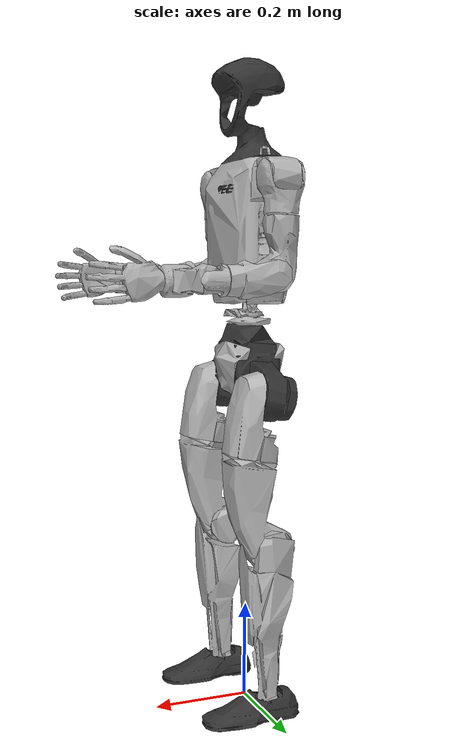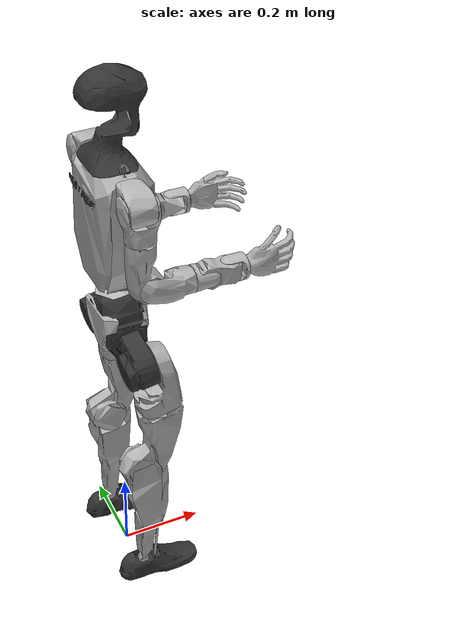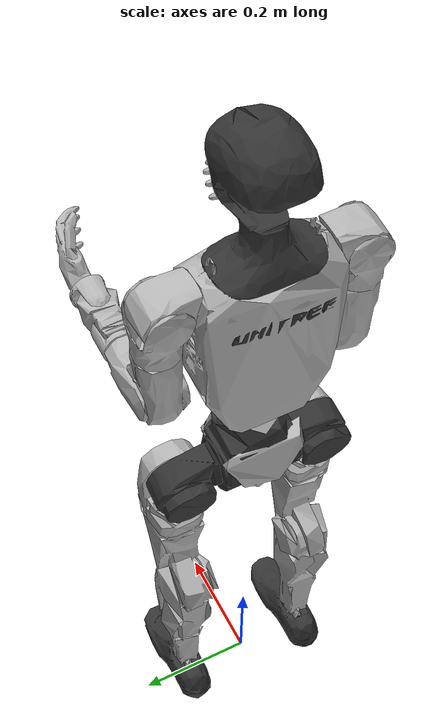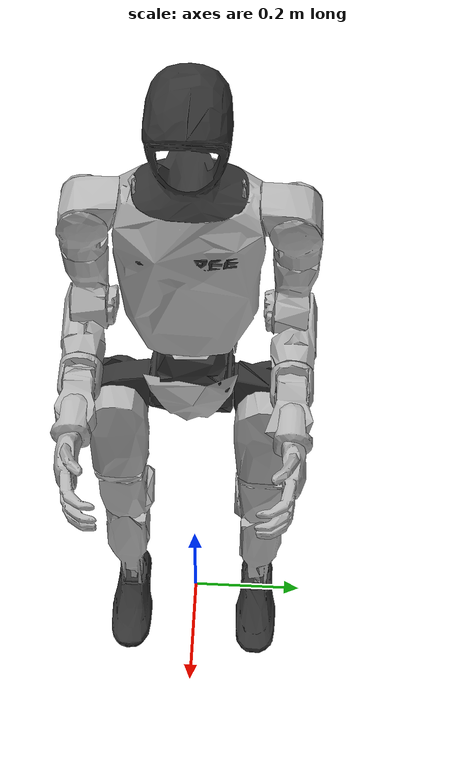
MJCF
<!-- Unitree G1 from MuJoCo Menagerie (BSD-3-Clause, see LICENSE), meshes packed by tools/pack_g1.py -->
<mujoco model="g1_29dof_rev_1_0">
  <compiler angle="radian" meshdir="meshes"/>

  <option integrator="implicitfast"/>

  <default>
    <default class="g1">
      <site rgba="1 0 0 1" size="0.01" group="5"/>
      <joint armature="0.01" frictionloss="0.3"/>
      <position kp="500" dampratio="1" inheritrange="1"/>
      <default class="visual">
        <geom group="2" type="mesh" contype="0" conaffinity="0" density="0" material="metal"/>
      </default>
      <default class="collision">
        <geom group="3" type="mesh"/>
        <default class="foot">
          <geom type="sphere" size="0.005" priority="1" friction="0.6" condim="3"/>
        </default>
      </default>
    </default>
  </default>

  <asset>
    <mesh name="head_link" file="head_link.stl"/>
    <mesh name="left_ankle_pitch_link" file="left_ankle_pitch_link.stl"/>
    <mesh name="left_ankle_roll_link" file="left_ankle_roll_link.stl"/>
    <mesh name="left_elbow_link" file="left_elbow_link.stl"/>
    <mesh name="left_hip_pitch_link" file="left_hip_pitch_link.stl"/>
    <mesh name="left_hip_roll_link" file="left_hip_roll_link.stl"/>
    <mesh name="left_hip_yaw_link" file="left_hip_yaw_link.stl"/>
    <mesh name="left_knee_link" file="left_knee_link.stl"/>
    <mesh name="left_rubber_hand" file="left_rubber_hand.stl"/>
    <mesh name="left_shoulder_pitch_link" file="left_shoulder_pitch_link.stl"/>
    <mesh name="left_shoulder_roll_link" file="left_shoulder_roll_link.stl"/>
    <mesh name="left_shoulder_yaw_link" file="left_shoulder_yaw_link.stl"/>
    <mesh name="left_wrist_pitch_link" file="left_wrist_pitch_link.stl"/>
    <mesh name="left_wrist_roll_link" file="left_wrist_roll_link.stl"/>
    <mesh name="left_wrist_yaw_link" file="left_wrist_yaw_link.stl"/>
    <mesh name="logo_link" file="logo_link.stl"/>
    <mesh name="pelvis" file="pelvis.stl"/>
    <mesh name="pelvis_contour_link" file="pelvis_contour_link.stl"/>
    <mesh name="right_ankle_pitch_link" file="right_ankle_pitch_link.stl"/>
    <mesh name="right_ankle_roll_link" file="right_ankle_roll_link.stl"/>
    <mesh name="right_elbow_link" file="right_elbow_link.stl"/>
    <mesh name="right_hip_pitch_link" file="right_hip_pitch_link.stl"/>
    <mesh name="right_hip_roll_link" file="right_hip_roll_link.stl"/>
    <mesh name="right_hip_yaw_link" file="right_hip_yaw_link.stl"/>
    <mesh name="right_knee_link" file="right_knee_link.stl"/>
    <mesh name="right_rubber_hand" file="right_rubber_hand.stl"/>
    <mesh name="right_shoulder_pitch_link" file="right_shoulder_pitch_link.stl"/>
    <mesh name="right_shoulder_roll_link" file="right_shoulder_roll_link.stl"/>
    <mesh name="right_shoulder_yaw_link" file="right_shoulder_yaw_link.stl"/>
    <mesh name="right_wrist_pitch_link" file="right_wrist_pitch_link.stl"/>
    <mesh name="right_wrist_roll_link" file="right_wrist_roll_link.stl"/>
    <mesh name="right_wrist_yaw_link" file="right_wrist_yaw_link.stl"/>
    <mesh name="torso_link" file="torso_link.stl"/>
    <mesh name="waist_roll_link" file="waist_roll_link.stl"/>
    <mesh name="waist_yaw_link" file="waist_yaw_link.stl"/>
    <mesh name="left_ankle_pitch_link_hull" file="left_ankle_pitch_link_hull.stl"/>
    <mesh name="left_elbow_link_hull" file="left_elbow_link_hull.stl"/>
    <mesh name="left_hip_pitch_link_hull" file="left_hip_pitch_link_hull.stl"/>
    <mesh name="left_hip_roll_link_hull" file="left_hip_roll_link_hull.stl"/>
    <mesh name="left_hip_yaw_link_hull" file="left_hip_yaw_link_hull.stl"/>
    <mesh name="left_knee_link_hull" file="left_knee_link_hull.stl"/>
    <mesh name="left_shoulder_yaw_link_hull" file="left_shoulder_yaw_link_hull.stl"/>
    <mesh name="left_wrist_pitch_link_hull" file="left_wrist_pitch_link_hull.stl"/>
    <mesh name="left_wrist_roll_link_hull" file="left_wrist_roll_link_hull.stl"/>
    <mesh name="left_wrist_yaw_link_hull" file="left_wrist_yaw_link_hull.stl"/>
    <mesh name="pelvis_contour_link_hull" file="pelvis_contour_link_hull.stl"/>
    <mesh name="right_ankle_pitch_link_hull" file="right_ankle_pitch_link_hull.stl"/>
    <mesh name="right_elbow_link_hull" file="right_elbow_link_hull.stl"/>
    <mesh name="right_hip_pitch_link_hull" file="right_hip_pitch_link_hull.stl"/>
    <mesh name="right_hip_roll_link_hull" file="right_hip_roll_link_hull.stl"/>
    <mesh name="right_hip_yaw_link_hull" file="right_hip_yaw_link_hull.stl"/>
    <mesh name="right_knee_link_hull" file="right_knee_link_hull.stl"/>
    <mesh name="right_shoulder_yaw_link_hull" file="right_shoulder_yaw_link_hull.stl"/>
    <mesh name="right_wrist_pitch_link_hull" file="right_wrist_pitch_link_hull.stl"/>
    <mesh name="right_wrist_roll_link_hull" file="right_wrist_roll_link_hull.stl"/>
    <mesh name="right_wrist_yaw_link_hull" file="right_wrist_yaw_link_hull.stl"/>
    <mesh name="torso_link_hull" file="torso_link_hull.stl"/>
    <material name="black" rgba="0.2 0.2 0.2 1"/>
    <material name="metal" rgba="0.7 0.7 0.7 1"/>
  </asset>

  <worldbody>
    <light pos="1 0 3.5" dir="0 0 -1" directional="true"/>
    <body name="pelvis" pos="0 0 0.793" childclass="g1">
      <inertial pos="0 0 -0.07605" quat="1 0 -0.000399148 0" mass="3.813" diaginertia="0.010549 0.0093089 0.0079184"/>
      <freejoint name="floating_base_joint"/>
      <geom class="visual" material="black" mesh="pelvis"/>
      <geom class="visual" mesh="pelvis_contour_link"/>
      <geom class="collision" mesh="pelvis_contour_link_hull"/>
      <site name="imu_in_pelvis" pos="0.04525 0 -0.08339" size="0.01"/>
      <body name="left_hip_pitch_link" pos="0 0.064452 -0.1027">
        <inertial pos="0.002741 0.047791 -0.02606" quat="0.954862 0.293964 0.0302556 0.030122" mass="1.35"
          diaginertia="0.00181517 0.00153422 0.00116212"/>
        <joint name="left_hip_pitch_joint" axis="0 1 0" range="-2.5307 2.8798" actuatorfrcrange="-88 88"/>
        <geom class="visual" material="black" mesh="left_hip_pitch_link"/>
        <geom class="collision" material="black" mesh="left_hip_pitch_link_hull"/>
        <body name="left_hip_roll_link" pos="0 0.052 -0.030465" quat="0.996179 0 -0.0873386 0">
          <inertial pos="0.029812 -0.001045 -0.087934" quat="0.977808 -1.97119e-05 0.205576 -0.0403793" mass="1.52"
            diaginertia="0.00254986 0.00241169 0.00148755"/>
          <joint name="left_hip_roll_joint" axis="1 0 0" range="-0.5236 2.9671" actuatorfrcrange="-139 139"/>
          <geom class="visual" mesh="left_hip_roll_link"/>
          <geom class="collision" mesh="left_hip_roll_link_hull"/>
          <body name="left_hip_yaw_link" pos="0.025001 0 -0.12412">
            <inertial pos="-0.057709 -0.010981 -0.15078" quat="0.600598 0.15832 0.223482 0.751181" mass="1.702"
              diaginertia="0.00776166 0.00717575 0.00160139"/>
            <joint name="left_hip_yaw_joint" axis="0 0 1" range="-2.7576 2.7576" actuatorfrcrange="-88 88"/>
            <geom class="visual" mesh="left_hip_yaw_link"/>
            <geom class="collision" mesh="left_hip_yaw_link_hull"/>
            <body name="left_knee_link" pos="-0.078273 0.0021489 -0.17734" quat="0.996179 0 0.0873386 0">
              <inertial pos="0.005457 0.003964 -0.12074" quat="0.923418 -0.0327699 0.0158246 0.382067" mass="1.932"
                diaginertia="0.0113804 0.0112778 0.00146458"/>
              <joint name="left_knee_joint" axis="0 1 0" range="-0.087267 2.8798" actuatorfrcrange="-139 139"/>
              <geom class="visual" mesh="left_knee_link"/>
              <geom class="collision" mesh="left_knee_link_hull"/>
              <body name="left_ankle_pitch_link" pos="0 -9.4445e-05 -0.30001">
                <inertial pos="-0.007269 0 0.011137" quat="0.603053 0.369225 0.369225 0.603053" mass="0.074"
                  diaginertia="1.89e-05 1.40805e-05 6.9195e-06"/>
                <joint name="left_ankle_pitch_joint" axis="0 1 0" range="-0.87267 0.5236" actuatorfrcrange="-50 50"/>
                <geom class="visual" mesh="left_ankle_pitch_link"/>
                <geom class="collision" mesh="left_ankle_pitch_link_hull"/>
                <body name="left_ankle_roll_link" pos="0 0 -0.017558">
                  <inertial pos="0.026505 0 -0.016425" quat="-0.000481092 0.728482 -0.000618967 0.685065" mass="0.608"
                    diaginertia="0.00167218 0.0016161 0.000217621"/>
                  <joint name="left_ankle_roll_joint" axis="1 0 0" range="-0.2618 0.2618" actuatorfrcrange="-50 50"/>
                  <geom class="visual" material="black" mesh="left_ankle_roll_link"/>
                  <geom class="foot" pos="-0.05 0.025 -0.03"/>
                  <geom class="foot" pos="-0.05 -0.025 -0.03"/>
                  <geom class="foot" pos="0.12 0.03 -0.03"/>
                  <geom class="foot" pos="0.12 -0.03 -0.03"/>
                  <site name="left_foot"/>
                </body>
              </body>
            </body>
          </body>
        </body>
      </body>
      <body name="right_hip_pitch_link" pos="0 -0.064452 -0.1027">
        <inertial pos="0.002741 -0.047791 -0.02606" quat="0.954862 -0.293964 0.0302556 -0.030122" mass="1.35"
          diaginertia="0.00181517 0.00153422 0.00116212"/>
        <joint name="right_hip_pitch_joint" axis="0 1 0" range="-2.5307 2.8798" actuatorfrcrange="-88 88"/>
        <geom class="visual" material="black" mesh="right_hip_pitch_link"/>
        <geom class="collision" material="black" mesh="right_hip_pitch_link_hull"/>
        <body name="right_hip_roll_link" pos="0 -0.052 -0.030465" quat="0.996179 0 -0.0873386 0">
          <inertial pos="0.029812 0.001045 -0.087934" quat="0.977808 1.97119e-05 0.205576 0.0403793" mass="1.52"
            diaginertia="0.00254986 0.00241169 0.00148755"/>
          <joint name="right_hip_roll_joint" axis="1 0 0" range="-2.9671 0.5236" actuatorfrcrange="-139 139"/>
          <geom class="visual" mesh="right_hip_roll_link"/>
          <geom class="collision" mesh="right_hip_roll_link_hull"/>
          <body name="right_hip_yaw_link" pos="0.025001 0 -0.12412">
            <inertial pos="-0.057709 0.010981 -0.15078" quat="0.751181 0.223482 0.15832 0.600598" mass="1.702"
              diaginertia="0.00776166 0.00717575 0.00160139"/>
            <joint name="right_hip_yaw_joint" axis="0 0 1" range="-2.7576 2.7576" actuatorfrcrange="-88 88"/>
            <geom class="visual" mesh="right_hip_yaw_link"/>
            <geom class="collision" mesh="right_hip_yaw_link_hull"/>
            <body name="right_knee_link" pos="-0.078273 -0.0021489 -0.17734" quat="0.996179 0 0.0873386 0">
              <inertial pos="0.005457 -0.003964 -0.12074" quat="0.923439 0.0345276 0.0116333 -0.382012" mass="1.932"
                diaginertia="0.011374 0.0112843 0.00146452"/>
              <joint name="right_knee_joint" axis="0 1 0" range="-0.087267 2.8798" actuatorfrcrange="-139 139"/>
              <geom class="visual" mesh="right_knee_link"/>
              <geom class="collision" mesh="right_knee_link_hull"/>
              <body name="right_ankle_pitch_link" pos="0 9.4445e-05 -0.30001">
                <inertial pos="-0.007269 0 0.011137" quat="0.603053 0.369225 0.369225 0.603053" mass="0.074"
                  diaginertia="1.89e-05 1.40805e-05 6.9195e-06"/>
                <joint name="right_ankle_pitch_joint" axis="0 1 0" range="-0.87267 0.5236" actuatorfrcrange="-50 50"/>
                <geom class="visual" mesh="right_ankle_pitch_link"/>
                <geom class="collision" mesh="right_ankle_pitch_link_hull"/>
                <body name="right_ankle_roll_link" pos="0 0 -0.017558">
                  <inertial pos="0.026505 0 -0.016425" quat="0.000481092 0.728482 0.000618967 0.685065" mass="0.608"
                    diaginertia="0.00167218 0.0016161 0.000217621"/>
                  <joint name="right_ankle_roll_joint" axis="1 0 0" range="-0.2618 0.2618" actuatorfrcrange="-50 50"/>
                  <geom class="visual" material="black" mesh="right_ankle_roll_link"/>
                  <geom class="foot" pos="-0.05 0.025 -0.03"/>
                  <geom class="foot" pos="-0.05 -0.025 -0.03"/>
                  <geom class="foot" pos="0.12 0.03 -0.03"/>
                  <geom class="foot" pos="0.12 -0.03 -0.03"/>
                  <site name="right_foot"/>
                </body>
              </body>
            </body>
          </body>
        </body>
      </body>
      <body name="waist_yaw_link">
        <inertial pos="0.003494 0.000233 0.018034" quat="0.289697 0.591001 -0.337795 0.672821" mass="0.214"
          diaginertia="0.000163531 0.000107714 0.000102205"/>
        <joint name="waist_yaw_joint" axis="0 0 1" range="-2.618 2.618" actuatorfrcrange="-88 88"/>
        <geom class="visual" mesh="waist_yaw_link"/>
        <body name="waist_roll_link" pos="-0.0039635 0 0.044">
          <inertial pos="0 2.3e-05 0" quat="0.5 0.5 -0.5 0.5" mass="0.086" diaginertia="8.245e-06 7.079e-06 6.339e-06"/>
          <joint name="waist_roll_joint" axis="1 0 0" range="-0.52 0.52" actuatorfrcrange="-50 50"/>
          <geom class="visual" mesh="waist_roll_link"/>
          <body name="torso_link">
            <inertial pos="0.00203158 0.000339683 0.184568" quat="0.999803 -6.03319e-05 0.0198256 0.00131986"
              mass="7.818" diaginertia="0.121847 0.109825 0.0273735"/>
            <joint name="waist_pitch_joint" axis="0 1 0" range="-0.52 0.52" actuatorfrcrange="-50 50"/>
            <geom class="visual" mesh="torso_link"/>
            <geom class="collision" mesh="torso_link_hull"/>
            <geom pos="0.0039635 0 -0.044" quat="1 0 0 0" class="visual" material="black" mesh="logo_link"/>
            <geom pos="0.0039635 0 -0.044" quat="1 0 0 0" class="collision" material="black" mesh="logo_link"/>
            <geom pos="0.0039635 0 -0.044" quat="1 0 0 0" class="visual" material="black" mesh="head_link"/>
            <geom pos="0.0039635 0 -0.044" quat="1 0 0 0" class="collision" material="black" mesh="head_link"/>
            <site name="imu_in_torso" pos="-0.03959 -0.00224 0.14792" size="0.01"/>
            <body name="left_shoulder_pitch_link" pos="0.0039563 0.10022 0.24778"
              quat="0.990264 0.139201 1.38722e-05 -9.86868e-05">
              <inertial pos="0 0.035892 -0.011628" quat="0.654152 0.0130458 -0.326267 0.68225" mass="0.718"
                diaginertia="0.000465864 0.000432842 0.000406394"/>
              <joint name="left_shoulder_pitch_joint" axis="0 1 0" range="-3.0892 2.6704" actuatorfrcrange="-25 25"/>
              <geom class="visual" mesh="left_shoulder_pitch_link"/>
              <geom size="0.03 0.025" pos="0 0.04 -0.01" quat="0.707107 0 0.707107 0" type="cylinder"
                rgba="0.7 0.7 0.7 1" class="collision"/>
              <body name="left_shoulder_roll_link" pos="0 0.038 -0.013831" quat="0.990268 -0.139172 0 0">
                <inertial pos="-0.000227 0.00727 -0.063243" quat="0.701256 -0.0196223 -0.00710317 0.712604" mass="0.643"
                  diaginertia="0.000691311 0.000618011 0.000388977"/>
                <joint name="left_shoulder_roll_joint" axis="1 0 0" range="-1.5882 2.2515" actuatorfrcrange="-25 25"/>
                <geom class="visual" mesh="left_shoulder_roll_link"/>
                <geom size="0.03 0.015" pos="-0.004 0.006 -0.053" type="cylinder" rgba="0.7 0.7 0.7 1"
                  class="collision"/>
                <body name="left_shoulder_yaw_link" pos="0 0.00624 -0.1032">
                  <inertial pos="0.010773 -0.002949 -0.072009" quat="0.716879 -0.0964829 -0.0679942 0.687134"
                    mass="0.734" diaginertia="0.00106187 0.00103217 0.000400661"/>
                  <joint name="left_shoulder_yaw_joint" axis="0 0 1" range="-2.618 2.618" actuatorfrcrange="-25 25"/>
                  <geom class="visual" mesh="left_shoulder_yaw_link"/>
                  <geom class="collision" mesh="left_shoulder_yaw_link_hull"/>
                  <body name="left_elbow_link" pos="0.015783 0 -0.080518">
                    <inertial pos="0.064956 0.004454 -0.010062" quat="0.541765 0.636132 0.388821 0.388129" mass="0.6"
                      diaginertia="0.000443035 0.000421612 0.000259353"/>
                    <joint name="left_elbow_joint" axis="0 1 0" range="-1.0472 2.0944" actuatorfrcrange="-25 25"/>
                    <geom class="visual" mesh="left_elbow_link"/>
                    <geom class="collision" mesh="left_elbow_link_hull"/>
                    <body name="left_wrist_roll_link" pos="0.1 0.00188791 -0.01">
                      <inertial pos="0.0171394 0.000537591 4.8864e-07" quat="0.575338 0.411667 -0.574906 0.411094"
                        mass="0.085445" diaginertia="5.48211e-05 4.96646e-05 3.57798e-05"/>
                      <joint name="left_wrist_roll_joint" axis="1 0 0" range="-1.97222 1.97222"
                        actuatorfrcrange="-25 25"/>
                      <geom class="visual" mesh="left_wrist_roll_link"/>
                      <geom class="collision" mesh="left_wrist_roll_link_hull"/>
                      <body name="left_wrist_pitch_link" pos="0.038 0 0">
                        <inertial pos="0.0229999 -0.00111685 -0.00111658" quat="0.249998 0.661363 0.293036 0.643608"
                          mass="0.48405" diaginertia="0.000430353 0.000429873 0.000164648"/>
                        <joint name="left_wrist_pitch_joint" axis="0 1 0" range="-1.61443 1.61443"
                          actuatorfrcrange="-5 5"/>
                        <geom class="visual" mesh="left_wrist_pitch_link"/>
                        <geom class="collision" mesh="left_wrist_pitch_link_hull"/>
                        <body name="left_wrist_yaw_link" pos="0.046 0 0">
                          <inertial pos="0.0708244 0.000191745 0.00161742" quat="0.510571 0.526295 0.468078 0.493188"
                            mass="0.254576" diaginertia="0.000646113 0.000559993 0.000147566"/>
                          <joint name="left_wrist_yaw_joint" axis="0 0 1" range="-1.61443 1.61443"
                            actuatorfrcrange="-5 5"/>
                          <geom class="visual" mesh="left_wrist_yaw_link"/>
                          <geom class="collision" mesh="left_wrist_yaw_link_hull"/>
                          <geom pos="0.0415 0.003 0" quat="1 0 0 0" class="visual" mesh="left_rubber_hand"/>
                        </body>
                      </body>
                    </body>
                  </body>
                </body>
              </body>
            </body>
            <body name="right_shoulder_pitch_link" pos="0.0039563 -0.10021 0.24778"
              quat="0.990264 -0.139201 1.38722e-05 9.86868e-05">
              <inertial pos="0 -0.035892 -0.011628" quat="0.68225 -0.326267 0.0130458 0.654152" mass="0.718"
                diaginertia="0.000465864 0.000432842 0.000406394"/>
              <joint name="right_shoulder_pitch_joint" axis="0 1 0" range="-3.0892 2.6704" actuatorfrcrange="-25 25"/>
              <geom class="visual" mesh="right_shoulder_pitch_link"/>
              <geom size="0.03 0.025" pos="0 -0.04 -0.01" quat="0.707107 0 0.707107 0" type="cylinder"
                rgba="0.7 0.7 0.7 1" class="collision"/>
              <body name="right_shoulder_roll_link" pos="0 -0.038 -0.013831" quat="0.990268 0.139172 0 0">
                <inertial pos="-0.000227 -0.00727 -0.063243" quat="0.712604 -0.00710317 -0.0196223 0.701256"
                  mass="0.643" diaginertia="0.000691311 0.000618011 0.000388977"/>
                <joint name="right_shoulder_roll_joint" axis="1 0 0" range="-2.2515 1.5882" actuatorfrcrange="-25 25"/>
                <geom class="visual" mesh="right_shoulder_roll_link"/>
                <geom size="0.03 0.015" pos="-0.004 -0.006 -0.053" type="cylinder" rgba="0.7 0.7 0.7 1"
                  class="collision"/>
                <body name="right_shoulder_yaw_link" pos="0 -0.00624 -0.1032">
                  <inertial pos="0.010773 0.002949 -0.072009" quat="0.687134 -0.0679942 -0.0964829 0.716879"
                    mass="0.734" diaginertia="0.00106187 0.00103217 0.000400661"/>
                  <joint name="right_shoulder_yaw_joint" axis="0 0 1" range="-2.618 2.618" actuatorfrcrange="-25 25"/>
                  <geom class="visual" mesh="right_shoulder_yaw_link"/>
                  <geom class="collision" mesh="right_shoulder_yaw_link_hull"/>
                  <body name="right_elbow_link" pos="0.015783 0 -0.080518">
                    <inertial pos="0.064956 -0.004454 -0.010062" quat="0.388129 0.388821 0.636132 0.541765" mass="0.6"
                      diaginertia="0.000443035 0.000421612 0.000259353"/>
                    <joint name="right_elbow_joint" axis="0 1 0" range="-1.0472 2.0944" actuatorfrcrange="-25 25"/>
                    <geom class="visual" mesh="right_elbow_link"/>
                    <geom class="collision" mesh="right_elbow_link_hull"/>
                    <body name="right_wrist_roll_link" pos="0.1 -0.00188791 -0.01">
                      <inertial pos="0.0171394 -0.000537591 4.8864e-07" quat="0.411667 0.575338 -0.411094 0.574906"
                        mass="0.085445" diaginertia="5.48211e-05 4.96646e-05 3.57798e-05"/>
                      <joint name="right_wrist_roll_joint" axis="1 0 0" range="-1.97222 1.97222"
                        actuatorfrcrange="-25 25"/>
                      <geom class="visual" mesh="right_wrist_roll_link"/>
                      <geom class="collision" mesh="right_wrist_roll_link_hull"/>
                      <body name="right_wrist_pitch_link" pos="0.038 0 0">
                        <inertial pos="0.0229999 0.00111685 -0.00111658" quat="0.643608 0.293036 0.661363 0.249998"
                          mass="0.48405" diaginertia="0.000430353 0.000429873 0.000164648"/>
                        <joint name="right_wrist_pitch_joint" axis="0 1 0" range="-1.61443 1.61443"
                          actuatorfrcrange="-5 5"/>
                        <geom class="visual" mesh="right_wrist_pitch_link"/>
                        <geom class="collision" mesh="right_wrist_pitch_link_hull"/>
                        <body name="right_wrist_yaw_link" pos="0.046 0 0">
                          <inertial pos="0.0708244 -0.000191745 0.00161742" quat="0.493188 0.468078 0.526295 0.510571"
                            mass="0.254576" diaginertia="0.000646113 0.000559993 0.000147566"/>
                          <joint name="right_wrist_yaw_joint" axis="0 0 1" range="-1.61443 1.61443"
                            actuatorfrcrange="-5 5"/>
                          <geom class="visual" mesh="right_wrist_yaw_link"/>
                          <geom class="collision" mesh="right_wrist_yaw_link_hull"/>
                          <geom pos="0.0415 -0.003 0" quat="1 0 0 0" class="visual" mesh="right_rubber_hand"/>
                        </body>
                      </body>
                    </body>
                  </body>
                </body>
              </body>
            </body>
          </body>
        </body>
      </body>
    </body>
  </worldbody>

  <actuator>
    <position class="g1" name="left_hip_pitch_joint" joint="left_hip_pitch_joint"/>
    <position class="g1" name="left_hip_roll_joint" joint="left_hip_roll_joint"/>
    <position class="g1" name="left_hip_yaw_joint" joint="left_hip_yaw_joint"/>
    <position class="g1" name="left_knee_joint" joint="left_knee_joint"/>
    <position class="g1" name="left_ankle_pitch_joint" joint="left_ankle_pitch_joint"/>
    <position class="g1" name="left_ankle_roll_joint" joint="left_ankle_roll_joint"/>

    <position class="g1" name="right_hip_pitch_joint" joint="right_hip_pitch_joint"/>
    <position class="g1" name="right_hip_roll_joint" joint="right_hip_roll_joint"/>
    <position class="g1" name="right_hip_yaw_joint" joint="right_hip_yaw_joint"/>
    <position class="g1" name="right_knee_joint" joint="right_knee_joint"/>
    <position class="g1" name="right_ankle_pitch_joint" joint="right_ankle_pitch_joint"/>
    <position class="g1" name="right_ankle_roll_joint" joint="right_ankle_roll_joint"/>

    <position class="g1" name="waist_yaw_joint" joint="waist_yaw_joint"/>
    <position class="g1" name="waist_roll_joint" joint="waist_roll_joint"/>
    <position class="g1" name="waist_pitch_joint" joint="waist_pitch_joint"/>

    <position class="g1" name="left_shoulder_pitch_joint" joint="left_shoulder_pitch_joint"/>
    <position class="g1" name="left_shoulder_roll_joint" joint="left_shoulder_roll_joint"/>
    <position class="g1" name="left_shoulder_yaw_joint" joint="left_shoulder_yaw_joint"/>
    <position class="g1" name="left_elbow_joint" joint="left_elbow_joint"/>
    <position class="g1" name="left_wrist_roll_joint" joint="left_wrist_roll_joint"/>
    <position class="g1" name="left_wrist_pitch_joint" joint="left_wrist_pitch_joint"/>
    <position class="g1" name="left_wrist_yaw_joint" joint="left_wrist_yaw_joint"/>

    <position class="g1" name="right_shoulder_pitch_joint" joint="right_shoulder_pitch_joint"/>
    <position class="g1" name="right_shoulder_roll_joint" joint="right_shoulder_roll_joint"/>
    <position class="g1" name="right_shoulder_yaw_joint" joint="right_shoulder_yaw_joint"/>
    <position class="g1" name="right_elbow_joint" joint="right_elbow_joint"/>
    <position class="g1" name="right_wrist_roll_joint" joint="right_wrist_roll_joint"/>
    <position class="g1" name="right_wrist_pitch_joint" joint="right_wrist_pitch_joint"/>
    <position class="g1" name="right_wrist_yaw_joint" joint="right_wrist_yaw_joint"/>
  </actuator>

  <sensor>
    <gyro site="imu_in_torso" name="imu-torso-angular-velocity" cutoff="34.9" noise="0.0005"/>
    <accelerometer site="imu_in_torso" name="imu-torso-linear-acceleration" cutoff="157" noise="0.01"/>
    <gyro site="imu_in_pelvis" name="imu-pelvis-angular-velocity" cutoff="34.9" noise="0.0005"/>
    <accelerometer site="imu_in_pelvis" name="imu-pelvis-linear-acceleration" cutoff="157" noise="0.01"/>
  </sensor>

  <keyframe>
    <key name="stand" qpos="0 0 0.79 1 0 0 0 0 0 0 0 0 0 0 0 0 0 0 0 0 0 0 0.2 0.2 0 1.28 0 0 0 0.2 -0.2 0 1.28 0 0 0"
      ctrl="0 0 0 0 0 0 0 0 0 0 0 0 0 0 0 0.2 0.2 0 1.28 0 0 0 0.2 -0.2 0 1.28 0 0 0"/>
  </keyframe>
</mujoco>
